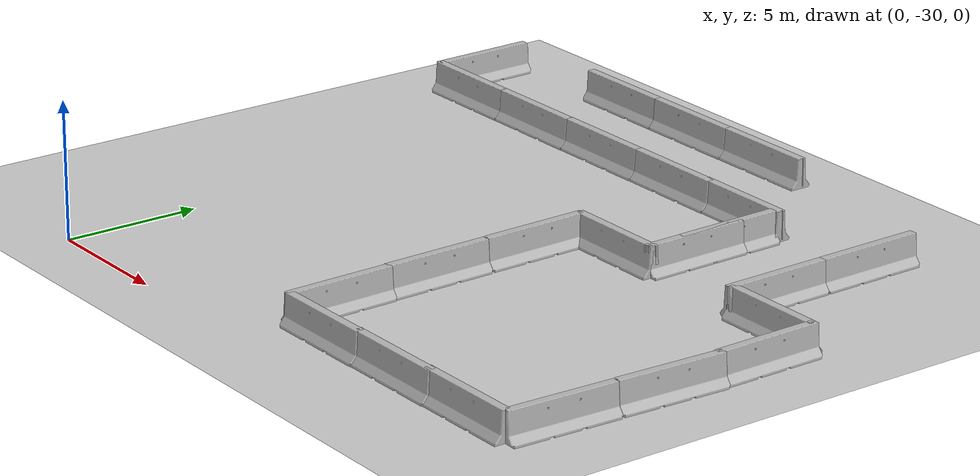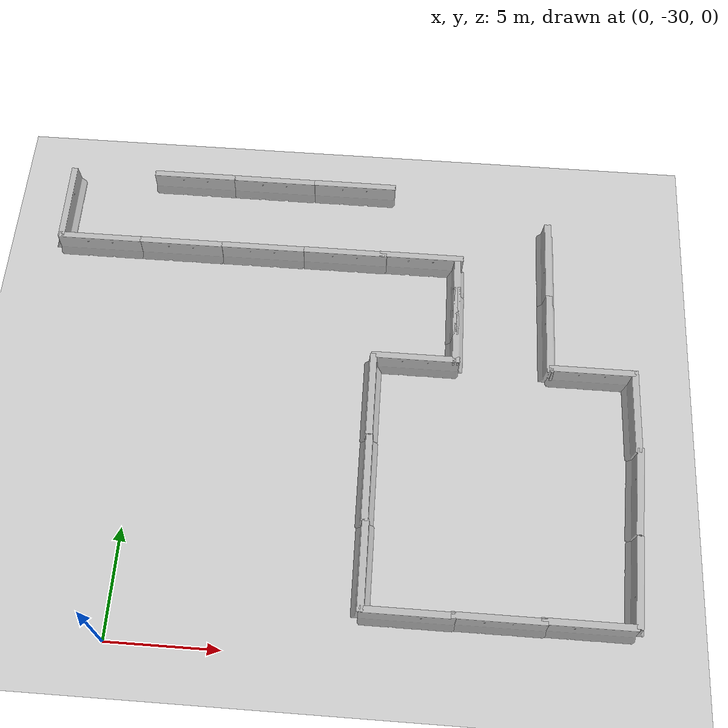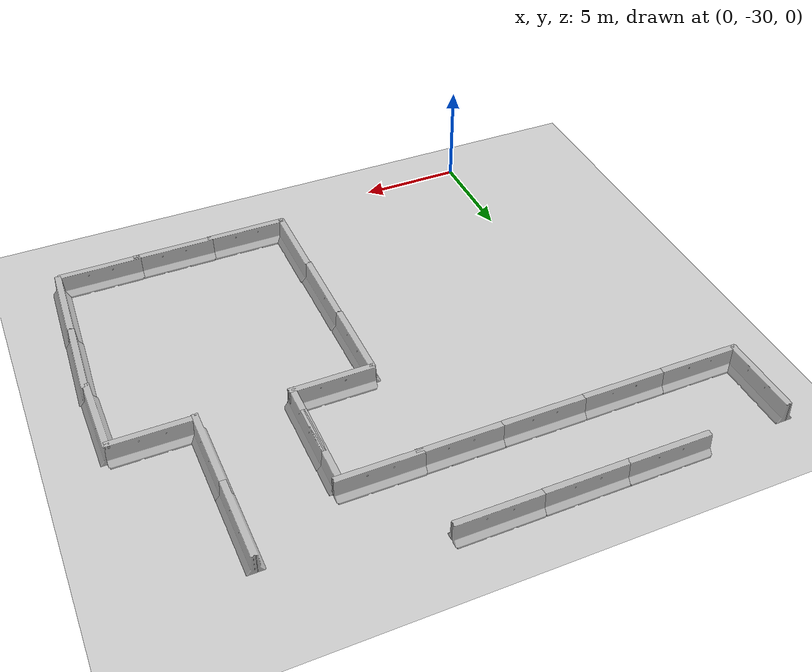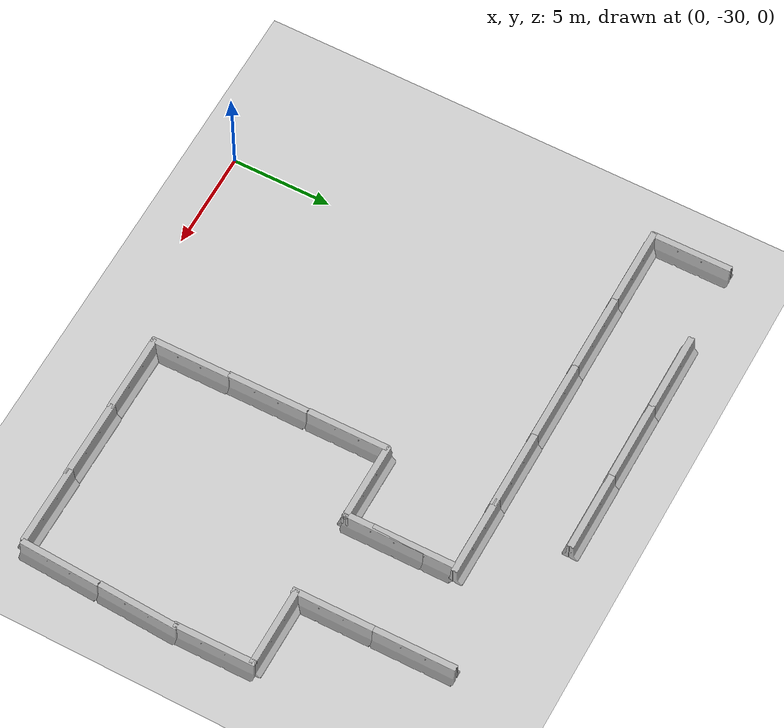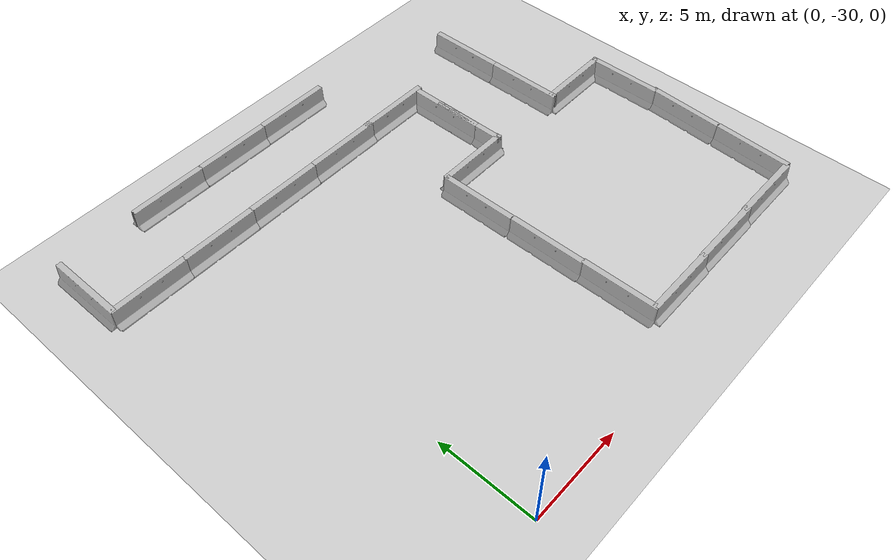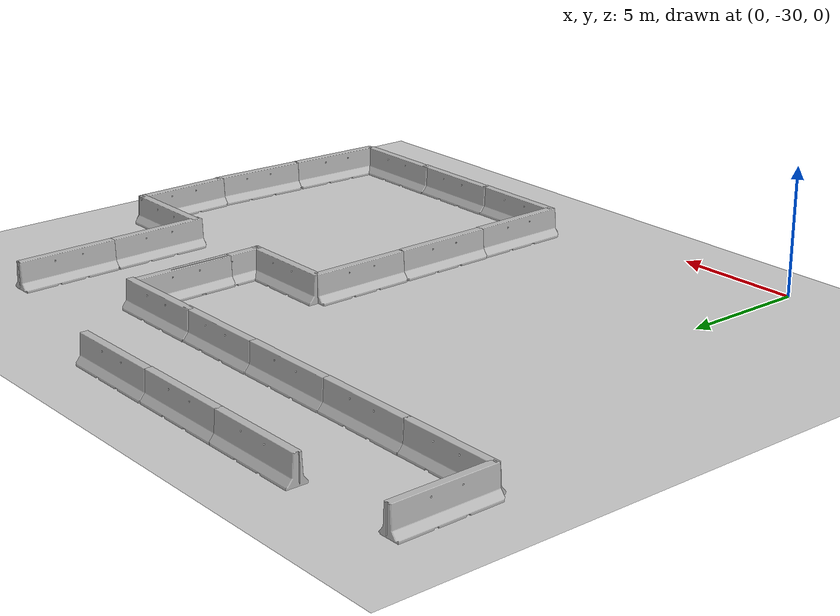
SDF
<sdf version="1.7">
 <world name="default">
  <model name="ground_plane">
   <static>1</static>
   <link name="link">
    <collision name="collision">
     <geometry><plane><normal>0 0 1</normal><size>100 100</size></plane></geometry>
     <surface><friction><ode><mu>100</mu><mu2>50</mu2></ode></friction></surface>
    </collision>
    <visual name="visual">
     <cast_shadows>0</cast_shadows>
     <geometry><plane><normal>0 0 1</normal><size>100 100</size></plane></geometry>
     <material>
      <script><uri>file://media/materials/scripts/gazebo.material</uri><name>Gazebo/Grey</name></script>
     </material>
    </visual>
   </link>
  </model>
  <model name="jersey_barrier_clone_5_clone_2">
   <static>1</static>
   <link name="link">
    <visual name="visual">
     <geometry><mesh><uri>model://jersey_barrier/meshes/jersey_barrier.dae</uri></mesh></geometry>
    </visual>
    <collision name="upright">
     <pose>0 0 0.5715 0 -0 0</pose>
     <geometry><box><size>4.06542 0.3063 1.143</size></box></geometry>
    </collision>
    <collision name="base">
     <pose>0 0 0.032258 0 -0 0</pose>
     <geometry><box><size>4.06542 0.8107 0.064516</size></box></geometry>
    </collision>
    <collision name="base2">
     <pose>0 0 0.1 0 -0 0</pose>
     <geometry><box><size>4.06542 0.65 0.1</size></box></geometry>
    </collision>
    <collision name="base3">
     <pose>0 0 0.2 0 -0 0</pose>
     <geometry><box><size>4.06542 0.5 0.1</size></box></geometry>
    </collision>
    <collision name="left-angle">
     <pose>0 -0.224 0.2401 0.9 -0 0</pose>
     <geometry><box><size>4.06542 0.5 0.064516</size></box></geometry>
    </collision>
    <collision name="right-angle">
     <pose>0 0.224 0.2401 -0.9 0 0</pose>
     <geometry><box><size>4.06542 0.5 0.064516</size></box></geometry>
    </collision>
   </link>
   <pose>-5.08874 -8.90463 0 0 -0 1.58011</pose>
  </model>
  <model name="jersey_barrier_clone_6">
   <static>1</static>
   <link name="link">
    <visual name="visual">
     <geometry><mesh><uri>model://jersey_barrier/meshes/jersey_barrier.dae</uri></mesh></geometry>
    </visual>
    <collision name="upright">
     <pose>0 0 0.5715 0 -0 0</pose>
     <geometry><box><size>4.06542 0.3063 1.143</size></box></geometry>
    </collision>
    <collision name="base">
     <pose>0 0 0.032258 0 -0 0</pose>
     <geometry><box><size>4.06542 0.8107 0.064516</size></box></geometry>
    </collision>
    <collision name="base2">
     <pose>0 0 0.1 0 -0 0</pose>
     <geometry><box><size>4.06542 0.65 0.1</size></box></geometry>
    </collision>
    <collision name="base3">
     <pose>0 0 0.2 0 -0 0</pose>
     <geometry><box><size>4.06542 0.5 0.1</size></box></geometry>
    </collision>
    <collision name="left-angle">
     <pose>0 -0.224 0.2401 0.9 -0 0</pose>
     <geometry><box><size>4.06542 0.5 0.064516</size></box></geometry>
    </collision>
    <collision name="right-angle">
     <pose>0 0.224 0.2401 -0.9 0 0</pose>
     <geometry><box><size>4.06542 0.5 0.064516</size></box></geometry>
    </collision>
   </link>
   <pose>0.984687 -6.87216 0 0 -0 0</pose>
  </model>
  <model name="jersey_barrier_clone_7">
   <static>1</static>
   <link name="link">
    <visual name="visual">
     <geometry><mesh><uri>model://jersey_barrier/meshes/jersey_barrier.dae</uri></mesh></geometry>
    </visual>
    <collision name="upright">
     <pose>0 0 0.5715 0 -0 0</pose>
     <geometry><box><size>4.06542 0.3063 1.143</size></box></geometry>
    </collision>
    <collision name="base">
     <pose>0 0 0.032258 0 -0 0</pose>
     <geometry><box><size>4.06542 0.8107 0.064516</size></box></geometry>
    </collision>
    <collision name="base2">
     <pose>0 0 0.1 0 -0 0</pose>
     <geometry><box><size>4.06542 0.65 0.1</size></box></geometry>
    </collision>
    <collision name="base3">
     <pose>0 0 0.2 0 -0 0</pose>
     <geometry><box><size>4.06542 0.5 0.1</size></box></geometry>
    </collision>
    <collision name="left-angle">
     <pose>0 -0.224 0.2401 0.9 -0 0</pose>
     <geometry><box><size>4.06542 0.5 0.064516</size></box></geometry>
    </collision>
    <collision name="right-angle">
     <pose>0 0.224 0.2401 -0.9 0 0</pose>
     <geometry><box><size>4.06542 0.5 0.064516</size></box></geometry>
    </collision>
   </link>
   <pose>-3.16651 -10.8264 0 0 -0 0</pose>
  </model>
  <model name="jersey_barrier_clone_8">
   <static>1</static>
   <link name="link">
    <visual name="visual">
     <geometry><mesh><uri>model://jersey_barrier/meshes/jersey_barrier.dae</uri></mesh></geometry>
    </visual>
    <collision name="upright">
     <pose>0 0 0.5715 0 -0 0</pose>
     <geometry><box><size>4.06542 0.3063 1.143</size></box></geometry>
    </collision>
    <collision name="base">
     <pose>0 0 0.032258 0 -0 0</pose>
     <geometry><box><size>4.06542 0.8107 0.064516</size></box></geometry>
    </collision>
    <collision name="base2">
     <pose>0 0 0.1 0 -0 0</pose>
     <geometry><box><size>4.06542 0.65 0.1</size></box></geometry>
    </collision>
    <collision name="base3">
     <pose>0 0 0.2 0 -0 0</pose>
     <geometry><box><size>4.06542 0.5 0.1</size></box></geometry>
    </collision>
    <collision name="left-angle">
     <pose>0 -0.224 0.2401 0.9 -0 0</pose>
     <geometry><box><size>4.06542 0.5 0.064516</size></box></geometry>
    </collision>
    <collision name="right-angle">
     <pose>0 0.224 0.2401 -0.9 0 0</pose>
     <geometry><box><size>4.06542 0.5 0.064516</size></box></geometry>
    </collision>
   </link>
   <pose>0.786309 -10.8193 0 0 -0 0</pose>
  </model>
  <model name="jersey_barrier_clone_9">
   <static>1</static>
   <link name="link">
    <visual name="visual">
     <geometry><mesh><uri>model://jersey_barrier/meshes/jersey_barrier.dae</uri></mesh></geometry>
    </visual>
    <collision name="upright">
     <pose>0 0 0.5715 0 -0 0</pose>
     <geometry><box><size>4.06542 0.3063 1.143</size></box></geometry>
    </collision>
    <collision name="base">
     <pose>0 0 0.032258 0 -0 0</pose>
     <geometry><box><size>4.06542 0.8107 0.064516</size></box></geometry>
    </collision>
    <collision name="base2">
     <pose>0 0 0.1 0 -0 0</pose>
     <geometry><box><size>4.06542 0.65 0.1</size></box></geometry>
    </collision>
    <collision name="base3">
     <pose>0 0 0.2 0 -0 0</pose>
     <geometry><box><size>4.06542 0.5 0.1</size></box></geometry>
    </collision>
    <collision name="left-angle">
     <pose>0 -0.224 0.2401 0.9 -0 0</pose>
     <geometry><box><size>4.06542 0.5 0.064516</size></box></geometry>
    </collision>
    <collision name="right-angle">
     <pose>0 0.224 0.2401 -0.9 0 0</pose>
     <geometry><box><size>4.06542 0.5 0.064516</size></box></geometry>
    </collision>
   </link>
   <pose>4.94322 -6.8738 0 0 -0 0</pose>
  </model>
  <model name="jersey_barrier_clone_10">
   <static>1</static>
   <link name="link">
    <visual name="visual">
     <geometry><mesh><uri>model://jersey_barrier/meshes/jersey_barrier.dae</uri></mesh></geometry>
    </visual>
    <collision name="upright">
     <pose>0 0 0.5715 0 -0 0</pose>
     <geometry><box><size>4.06542 0.3063 1.143</size></box></geometry>
    </collision>
    <collision name="base">
     <pose>0 0 0.032258 0 -0 0</pose>
     <geometry><box><size>4.06542 0.8107 0.064516</size></box></geometry>
    </collision>
    <collision name="base2">
     <pose>0 0 0.1 0 -0 0</pose>
     <geometry><box><size>4.06542 0.65 0.1</size></box></geometry>
    </collision>
    <collision name="base3">
     <pose>0 0 0.2 0 -0 0</pose>
     <geometry><box><size>4.06542 0.5 0.1</size></box></geometry>
    </collision>
    <collision name="left-angle">
     <pose>0 -0.224 0.2401 0.9 -0 0</pose>
     <geometry><box><size>4.06542 0.5 0.064516</size></box></geometry>
    </collision>
    <collision name="right-angle">
     <pose>0 0.224 0.2401 -0.9 0 0</pose>
     <geometry><box><size>4.06542 0.5 0.064516</size></box></geometry>
    </collision>
   </link>
   <pose>4.75505 -10.805 0 0 -0 0</pose>
  </model>
  <model name="jersey_barrier_clone_11">
   <static>1</static>
   <link name="link">
    <visual name="visual">
     <geometry><mesh><uri>model://jersey_barrier/meshes/jersey_barrier.dae</uri></mesh></geometry>
    </visual>
    <collision name="upright">
     <pose>0 0 0.5715 0 -0 0</pose>
     <geometry><box><size>4.06542 0.3063 1.143</size></box></geometry>
    </collision>
    <collision name="base">
     <pose>0 0 0.032258 0 -0 0</pose>
     <geometry><box><size>4.06542 0.8107 0.064516</size></box></geometry>
    </collision>
    <collision name="base2">
     <pose>0 0 0.1 0 -0 0</pose>
     <geometry><box><size>4.06542 0.65 0.1</size></box></geometry>
    </collision>
    <collision name="base3">
     <pose>0 0 0.2 0 -0 0</pose>
     <geometry><box><size>4.06542 0.5 0.1</size></box></geometry>
    </collision>
    <collision name="left-angle">
     <pose>0 -0.224 0.2401 0.9 -0 0</pose>
     <geometry><box><size>4.06542 0.5 0.064516</size></box></geometry>
    </collision>
    <collision name="right-angle">
     <pose>0 0.224 0.2401 -0.9 0 0</pose>
     <geometry><box><size>4.06542 0.5 0.064516</size></box></geometry>
    </collision>
   </link>
   <pose>8.93899 -6.86162 0 0 -0 0</pose>
  </model>
  <model name="jersey_barrier_clone_12">
   <static>1</static>
   <link name="link">
    <visual name="visual">
     <geometry><mesh><uri>model://jersey_barrier/meshes/jersey_barrier.dae</uri></mesh></geometry>
    </visual>
    <collision name="upright">
     <pose>0 0 0.5715 0 -0 0</pose>
     <geometry><box><size>4.06542 0.3063 1.143</size></box></geometry>
    </collision>
    <collision name="base">
     <pose>0 0 0.032258 0 -0 0</pose>
     <geometry><box><size>4.06542 0.8107 0.064516</size></box></geometry>
    </collision>
    <collision name="base2">
     <pose>0 0 0.1 0 -0 0</pose>
     <geometry><box><size>4.06542 0.65 0.1</size></box></geometry>
    </collision>
    <collision name="base3">
     <pose>0 0 0.2 0 -0 0</pose>
     <geometry><box><size>4.06542 0.5 0.1</size></box></geometry>
    </collision>
    <collision name="left-angle">
     <pose>0 -0.224 0.2401 0.9 -0 0</pose>
     <geometry><box><size>4.06542 0.5 0.064516</size></box></geometry>
    </collision>
    <collision name="right-angle">
     <pose>0 0.224 0.2401 -0.9 0 0</pose>
     <geometry><box><size>4.06542 0.5 0.064516</size></box></geometry>
    </collision>
   </link>
   <pose>8.74966 -10.7927 0 0 -0 0</pose>
  </model>
  <model name="jersey_barrier_clone_12_clone">
   <static>1</static>
   <link name="link">
    <visual name="visual">
     <geometry><mesh><uri>model://jersey_barrier/meshes/jersey_barrier.dae</uri></mesh></geometry>
    </visual>
    <collision name="upright">
     <pose>0 0 0.5715 0 -0 0</pose>
     <geometry><box><size>4.06542 0.3063 1.143</size></box></geometry>
    </collision>
    <collision name="base">
     <pose>0 0 0.032258 0 -0 0</pose>
     <geometry><box><size>4.06542 0.8107 0.064516</size></box></geometry>
    </collision>
    <collision name="base2">
     <pose>0 0 0.1 0 -0 0</pose>
     <geometry><box><size>4.06542 0.65 0.1</size></box></geometry>
    </collision>
    <collision name="base3">
     <pose>0 0 0.2 0 -0 0</pose>
     <geometry><box><size>4.06542 0.5 0.1</size></box></geometry>
    </collision>
    <collision name="left-angle">
     <pose>0 -0.224 0.2401 0.9 -0 0</pose>
     <geometry><box><size>4.06542 0.5 0.064516</size></box></geometry>
    </collision>
    <collision name="right-angle">
     <pose>0 0.224 0.2401 -0.9 0 0</pose>
     <geometry><box><size>4.06542 0.5 0.064516</size></box></geometry>
    </collision>
   </link>
   <pose>12.4162 -10.7691 0 0 -0 0</pose>
  </model>
  <model name="jersey_barrier_clone_5_clone_clone_clone_1_clone">
   <static>1</static>
   <link name="link">
    <visual name="visual">
     <geometry><mesh><uri>model://jersey_barrier/meshes/jersey_barrier.dae</uri></mesh></geometry>
    </visual>
    <collision name="upright">
     <pose>0 0 0.5715 0 -0 0</pose>
     <geometry><box><size>4.06542 0.3063 1.143</size></box></geometry>
    </collision>
    <collision name="base">
     <pose>0 0 0.032258 0 -0 0</pose>
     <geometry><box><size>4.06542 0.8107 0.064516</size></box></geometry>
    </collision>
    <collision name="base2">
     <pose>0 0 0.1 0 -0 0</pose>
     <geometry><box><size>4.06542 0.65 0.1</size></box></geometry>
    </collision>
    <collision name="base3">
     <pose>0 0 0.2 0 -0 0</pose>
     <geometry><box><size>4.06542 0.5 0.1</size></box></geometry>
    </collision>
    <collision name="left-angle">
     <pose>0 -0.224 0.2401 0.9 -0 0</pose>
     <geometry><box><size>4.06542 0.5 0.064516</size></box></geometry>
    </collision>
    <collision name="right-angle">
     <pose>0 0.224 0.2401 -0.9 0 0</pose>
     <geometry><box><size>4.06542 0.5 0.064516</size></box></geometry>
    </collision>
   </link>
   <pose>18.5041 -10.5124 0 0 -0 1.58011</pose>
  </model>
  <model name="jersey_barrier_clone_5_clone_clone_clone_1_clone_0">
   <static>1</static>
   <link name="link">
    <visual name="visual">
     <geometry><mesh><uri>model://jersey_barrier/meshes/jersey_barrier.dae</uri></mesh></geometry>
    </visual>
    <collision name="upright">
     <pose>0 0 0.5715 0 -0 0</pose>
     <geometry><box><size>4.06542 0.3063 1.143</size></box></geometry>
    </collision>
    <collision name="base">
     <pose>0 0 0.032258 0 -0 0</pose>
     <geometry><box><size>4.06542 0.8107 0.064516</size></box></geometry>
    </collision>
    <collision name="base2">
     <pose>0 0 0.1 0 -0 0</pose>
     <geometry><box><size>4.06542 0.65 0.1</size></box></geometry>
    </collision>
    <collision name="base3">
     <pose>0 0 0.2 0 -0 0</pose>
     <geometry><box><size>4.06542 0.5 0.1</size></box></geometry>
    </collision>
    <collision name="left-angle">
     <pose>0 -0.224 0.2401 0.9 -0 0</pose>
     <geometry><box><size>4.06542 0.5 0.064516</size></box></geometry>
    </collision>
    <collision name="right-angle">
     <pose>0 0.224 0.2401 -0.9 0 0</pose>
     <geometry><box><size>4.06542 0.5 0.064516</size></box></geometry>
    </collision>
   </link>
   <pose>14.1887 -12.9127 0 0 -0 1.58011</pose>
  </model>
  <model name="jersey_barrier_clone_5_clone_clone_clone_1_clone_clone">
   <static>1</static>
   <link name="link">
    <visual name="visual">
     <geometry><mesh><uri>model://jersey_barrier/meshes/jersey_barrier.dae</uri></mesh></geometry>
    </visual>
    <collision name="upright">
     <pose>0 0 0.5715 0 -0 0</pose>
     <geometry><box><size>4.06542 0.3063 1.143</size></box></geometry>
    </collision>
    <collision name="base">
     <pose>0 0 0.032258 0 -0 0</pose>
     <geometry><box><size>4.06542 0.8107 0.064516</size></box></geometry>
    </collision>
    <collision name="base2">
     <pose>0 0 0.1 0 -0 0</pose>
     <geometry><box><size>4.06542 0.65 0.1</size></box></geometry>
    </collision>
    <collision name="base3">
     <pose>0 0 0.2 0 -0 0</pose>
     <geometry><box><size>4.06542 0.5 0.1</size></box></geometry>
    </collision>
    <collision name="left-angle">
     <pose>0 -0.224 0.2401 0.9 -0 0</pose>
     <geometry><box><size>4.06542 0.5 0.064516</size></box></geometry>
    </collision>
    <collision name="right-angle">
     <pose>0 0.224 0.2401 -0.9 0 0</pose>
     <geometry><box><size>4.06542 0.5 0.064516</size></box></geometry>
    </collision>
   </link>
   <pose>18.5466 -14.5181 0 0 -0 1.58011</pose>
  </model>
  <model name="jersey_barrier_clone_5_clone_clone_clone_1_clone_clone_0">
   <static>1</static>
   <link name="link">
    <visual name="visual">
     <geometry><mesh><uri>model://jersey_barrier/meshes/jersey_barrier.dae</uri></mesh></geometry>
    </visual>
    <collision name="upright">
     <pose>0 0 0.5715 0 -0 0</pose>
     <geometry><box><size>4.06542 0.3063 1.143</size></box></geometry>
    </collision>
    <collision name="base">
     <pose>0 0 0.032258 0 -0 0</pose>
     <geometry><box><size>4.06542 0.8107 0.064516</size></box></geometry>
    </collision>
    <collision name="base2">
     <pose>0 0 0.1 0 -0 0</pose>
     <geometry><box><size>4.06542 0.65 0.1</size></box></geometry>
    </collision>
    <collision name="base3">
     <pose>0 0 0.2 0 -0 0</pose>
     <geometry><box><size>4.06542 0.5 0.1</size></box></geometry>
    </collision>
    <collision name="left-angle">
     <pose>0 -0.224 0.2401 0.9 -0 0</pose>
     <geometry><box><size>4.06542 0.5 0.064516</size></box></geometry>
    </collision>
    <collision name="right-angle">
     <pose>0 0.224 0.2401 -0.9 0 0</pose>
     <geometry><box><size>4.06542 0.5 0.064516</size></box></geometry>
    </collision>
   </link>
   <pose>14.2128 -14.3645 0 0 -0 1.58011</pose>
  </model>
  <model name="jersey_barrier_clone_12_clone_clone">
   <static>1</static>
   <link name="link">
    <visual name="visual">
     <geometry><mesh><uri>model://jersey_barrier/meshes/jersey_barrier.dae</uri></mesh></geometry>
    </visual>
    <collision name="upright">
     <pose>0 0 0.5715 0 -0 0</pose>
     <geometry><box><size>4.06542 0.3063 1.143</size></box></geometry>
    </collision>
    <collision name="base">
     <pose>0 0 0.032258 0 -0 0</pose>
     <geometry><box><size>4.06542 0.8107 0.064516</size></box></geometry>
    </collision>
    <collision name="base2">
     <pose>0 0 0.1 0 -0 0</pose>
     <geometry><box><size>4.06542 0.65 0.1</size></box></geometry>
    </collision>
    <collision name="base3">
     <pose>0 0 0.2 0 -0 0</pose>
     <geometry><box><size>4.06542 0.5 0.1</size></box></geometry>
    </collision>
    <collision name="left-angle">
     <pose>0 -0.224 0.2401 0.9 -0 0</pose>
     <geometry><box><size>4.06542 0.5 0.064516</size></box></geometry>
    </collision>
    <collision name="right-angle">
     <pose>0 0.224 0.2401 -0.9 0 0</pose>
     <geometry><box><size>4.06542 0.5 0.064516</size></box></geometry>
    </collision>
   </link>
   <pose>12.3928 -16.2286 0 0 -0 0</pose>
  </model>
  <model name="jersey_barrier_clone_12_clone_clone_0">
   <static>1</static>
   <link name="link">
    <visual name="visual">
     <geometry><mesh><uri>model://jersey_barrier/meshes/jersey_barrier.dae</uri></mesh></geometry>
    </visual>
    <collision name="upright">
     <pose>0 0 0.5715 0 -0 0</pose>
     <geometry><box><size>4.06542 0.3063 1.143</size></box></geometry>
    </collision>
    <collision name="base">
     <pose>0 0 0.032258 0 -0 0</pose>
     <geometry><box><size>4.06542 0.8107 0.064516</size></box></geometry>
    </collision>
    <collision name="base2">
     <pose>0 0 0.1 0 -0 0</pose>
     <geometry><box><size>4.06542 0.65 0.1</size></box></geometry>
    </collision>
    <collision name="base3">
     <pose>0 0 0.2 0 -0 0</pose>
     <geometry><box><size>4.06542 0.5 0.1</size></box></geometry>
    </collision>
    <collision name="left-angle">
     <pose>0 -0.224 0.2401 0.9 -0 0</pose>
     <geometry><box><size>4.06542 0.5 0.064516</size></box></geometry>
    </collision>
    <collision name="right-angle">
     <pose>0 0.224 0.2401 -0.9 0 0</pose>
     <geometry><box><size>4.06542 0.5 0.064516</size></box></geometry>
    </collision>
   </link>
   <pose>20.4977 -16.3266 0 0 -0 0</pose>
  </model>
  <model name="jersey_barrier_clone_5_clone_clone_clone_1_clone_clone_clone">
   <static>1</static>
   <link name="link">
    <visual name="visual">
     <geometry><mesh><uri>model://jersey_barrier/meshes/jersey_barrier.dae</uri></mesh></geometry>
    </visual>
    <collision name="upright">
     <pose>0 0 0.5715 0 -0 0</pose>
     <geometry><box><size>4.06542 0.3063 1.143</size></box></geometry>
    </collision>
    <collision name="base">
     <pose>0 0 0.032258 0 -0 0</pose>
     <geometry><box><size>4.06542 0.8107 0.064516</size></box></geometry>
    </collision>
    <collision name="base2">
     <pose>0 0 0.1 0 -0 0</pose>
     <geometry><box><size>4.06542 0.65 0.1</size></box></geometry>
    </collision>
    <collision name="base3">
     <pose>0 0 0.2 0 -0 0</pose>
     <geometry><box><size>4.06542 0.5 0.1</size></box></geometry>
    </collision>
    <collision name="left-angle">
     <pose>0 -0.224 0.2401 0.9 -0 0</pose>
     <geometry><box><size>4.06542 0.5 0.064516</size></box></geometry>
    </collision>
    <collision name="right-angle">
     <pose>0 0.224 0.2401 -0.9 0 0</pose>
     <geometry><box><size>4.06542 0.5 0.064516</size></box></geometry>
    </collision>
   </link>
   <pose>22.4332 -18.196 0 0 -0 1.58011</pose>
  </model>
  <model name="jersey_barrier_clone_5_clone_clone_clone_1_clone_clone_clone_0">
   <static>1</static>
   <link name="link">
    <visual name="visual">
     <geometry><mesh><uri>model://jersey_barrier/meshes/jersey_barrier.dae</uri></mesh></geometry>
    </visual>
    <collision name="upright">
     <pose>0 0 0.5715 0 -0 0</pose>
     <geometry><box><size>4.06542 0.3063 1.143</size></box></geometry>
    </collision>
    <collision name="base">
     <pose>0 0 0.032258 0 -0 0</pose>
     <geometry><box><size>4.06542 0.8107 0.064516</size></box></geometry>
    </collision>
    <collision name="base2">
     <pose>0 0 0.1 0 -0 0</pose>
     <geometry><box><size>4.06542 0.65 0.1</size></box></geometry>
    </collision>
    <collision name="base3">
     <pose>0 0 0.2 0 -0 0</pose>
     <geometry><box><size>4.06542 0.5 0.1</size></box></geometry>
    </collision>
    <collision name="left-angle">
     <pose>0 -0.224 0.2401 0.9 -0 0</pose>
     <geometry><box><size>4.06542 0.5 0.064516</size></box></geometry>
    </collision>
    <collision name="right-angle">
     <pose>0 0.224 0.2401 -0.9 0 0</pose>
     <geometry><box><size>4.06542 0.5 0.064516</size></box></geometry>
    </collision>
   </link>
   <pose>22.4203 -22.0028 0 0 -0 1.52129</pose>
  </model>
  <model name="jersey_barrier_clone_5_clone_clone_clone_1_clone_clone_clone_0_clone">
   <static>1</static>
   <link name="link">
    <visual name="visual">
     <geometry><mesh><uri>model://jersey_barrier/meshes/jersey_barrier.dae</uri></mesh></geometry>
    </visual>
    <collision name="upright">
     <pose>0 0 0.5715 0 -0 0</pose>
     <geometry><box><size>4.06542 0.3063 1.143</size></box></geometry>
    </collision>
    <collision name="base">
     <pose>0 0 0.032258 0 -0 0</pose>
     <geometry><box><size>4.06542 0.8107 0.064516</size></box></geometry>
    </collision>
    <collision name="base2">
     <pose>0 0 0.1 0 -0 0</pose>
     <geometry><box><size>4.06542 0.65 0.1</size></box></geometry>
    </collision>
    <collision name="base3">
     <pose>0 0 0.2 0 -0 0</pose>
     <geometry><box><size>4.06542 0.5 0.1</size></box></geometry>
    </collision>
    <collision name="left-angle">
     <pose>0 -0.224 0.2401 0.9 -0 0</pose>
     <geometry><box><size>4.06542 0.5 0.064516</size></box></geometry>
    </collision>
    <collision name="right-angle">
     <pose>0 0.224 0.2401 -0.9 0 0</pose>
     <geometry><box><size>4.06542 0.5 0.064516</size></box></geometry>
    </collision>
   </link>
   <pose>10.4901 -18.191 0 0 -0 1.58011</pose>
  </model>
  <model name="jersey_barrier_clone_5_clone_clone_clone_1_clone_clone_clone_0_clone_0">
   <static>1</static>
   <link name="link">
    <visual name="visual">
     <geometry><mesh><uri>model://jersey_barrier/meshes/jersey_barrier.dae</uri></mesh></geometry>
    </visual>
    <collision name="upright">
     <pose>0 0 0.5715 0 -0 0</pose>
     <geometry><box><size>4.06542 0.3063 1.143</size></box></geometry>
    </collision>
    <collision name="base">
     <pose>0 0 0.032258 0 -0 0</pose>
     <geometry><box><size>4.06542 0.8107 0.064516</size></box></geometry>
    </collision>
    <collision name="base2">
     <pose>0 0 0.1 0 -0 0</pose>
     <geometry><box><size>4.06542 0.65 0.1</size></box></geometry>
    </collision>
    <collision name="base3">
     <pose>0 0 0.2 0 -0 0</pose>
     <geometry><box><size>4.06542 0.5 0.1</size></box></geometry>
    </collision>
    <collision name="left-angle">
     <pose>0 -0.224 0.2401 0.9 -0 0</pose>
     <geometry><box><size>4.06542 0.5 0.064516</size></box></geometry>
    </collision>
    <collision name="right-angle">
     <pose>0 0.224 0.2401 -0.9 0 0</pose>
     <geometry><box><size>4.06542 0.5 0.064516</size></box></geometry>
    </collision>
   </link>
   <pose>10.5525 -22.2545 0 0 -0 1.58011</pose>
  </model>
  <model name="jersey_barrier_clone_5_clone_clone_clone_1_clone_clone_clone_0_clone_1">
   <static>1</static>
   <link name="link">
    <visual name="visual">
     <geometry><mesh><uri>model://jersey_barrier/meshes/jersey_barrier.dae</uri></mesh></geometry>
    </visual>
    <collision name="upright">
     <pose>0 0 0.5715 0 -0 0</pose>
     <geometry><box><size>4.06542 0.3063 1.143</size></box></geometry>
    </collision>
    <collision name="base">
     <pose>0 0 0.032258 0 -0 0</pose>
     <geometry><box><size>4.06542 0.8107 0.064516</size></box></geometry>
    </collision>
    <collision name="base2">
     <pose>0 0 0.1 0 -0 0</pose>
     <geometry><box><size>4.06542 0.65 0.1</size></box></geometry>
    </collision>
    <collision name="base3">
     <pose>0 0 0.2 0 -0 0</pose>
     <geometry><box><size>4.06542 0.5 0.1</size></box></geometry>
    </collision>
    <collision name="left-angle">
     <pose>0 -0.224 0.2401 0.9 -0 0</pose>
     <geometry><box><size>4.06542 0.5 0.064516</size></box></geometry>
    </collision>
    <collision name="right-angle">
     <pose>0 0.224 0.2401 -0.9 0 0</pose>
     <geometry><box><size>4.06542 0.5 0.064516</size></box></geometry>
    </collision>
   </link>
   <pose>22.2466 -26.0617 0 0 -0 1.52361</pose>
  </model>
  <model name="jersey_barrier_clone_5_clone_clone_clone_1_clone_clone_clone_0_clone_2">
   <static>1</static>
   <link name="link">
    <visual name="visual">
     <geometry><mesh><uri>model://jersey_barrier/meshes/jersey_barrier.dae</uri></mesh></geometry>
    </visual>
    <collision name="upright">
     <pose>0 0 0.5715 0 -0 0</pose>
     <geometry><box><size>4.06542 0.3063 1.143</size></box></geometry>
    </collision>
    <collision name="base">
     <pose>0 0 0.032258 0 -0 0</pose>
     <geometry><box><size>4.06542 0.8107 0.064516</size></box></geometry>
    </collision>
    <collision name="base2">
     <pose>0 0 0.1 0 -0 0</pose>
     <geometry><box><size>4.06542 0.65 0.1</size></box></geometry>
    </collision>
    <collision name="base3">
     <pose>0 0 0.2 0 -0 0</pose>
     <geometry><box><size>4.06542 0.5 0.1</size></box></geometry>
    </collision>
    <collision name="left-angle">
     <pose>0 -0.224 0.2401 0.9 -0 0</pose>
     <geometry><box><size>4.06542 0.5 0.064516</size></box></geometry>
    </collision>
    <collision name="right-angle">
     <pose>0 0.224 0.2401 -0.9 0 0</pose>
     <geometry><box><size>4.06542 0.5 0.064516</size></box></geometry>
    </collision>
   </link>
   <pose>10.6348 -26.1886 0 0 -0 1.58011</pose>
  </model>
  <model name="jersey_barrier_clone_12_clone_clone_clone">
   <static>1</static>
   <link name="link">
    <visual name="visual">
     <geometry><mesh><uri>model://jersey_barrier/meshes/jersey_barrier.dae</uri></mesh></geometry>
    </visual>
    <collision name="upright">
     <pose>0 0 0.5715 0 -0 0</pose>
     <geometry><box><size>4.06542 0.3063 1.143</size></box></geometry>
    </collision>
    <collision name="base">
     <pose>0 0 0.032258 0 -0 0</pose>
     <geometry><box><size>4.06542 0.8107 0.064516</size></box></geometry>
    </collision>
    <collision name="base2">
     <pose>0 0 0.1 0 -0 0</pose>
     <geometry><box><size>4.06542 0.65 0.1</size></box></geometry>
    </collision>
    <collision name="base3">
     <pose>0 0 0.2 0 -0 0</pose>
     <geometry><box><size>4.06542 0.5 0.1</size></box></geometry>
    </collision>
    <collision name="left-angle">
     <pose>0 -0.224 0.2401 0.9 -0 0</pose>
     <geometry><box><size>4.06542 0.5 0.064516</size></box></geometry>
    </collision>
    <collision name="right-angle">
     <pose>0 0.224 0.2401 -0.9 0 0</pose>
     <geometry><box><size>4.06542 0.5 0.064516</size></box></geometry>
    </collision>
   </link>
   <pose>12.5918 -28.0775 0 0 -0 0</pose>
  </model>
  <model name="jersey_barrier_clone_12_clone_clone_clone_0">
   <static>1</static>
   <link name="link">
    <visual name="visual">
     <geometry><mesh><uri>model://jersey_barrier/meshes/jersey_barrier.dae</uri></mesh></geometry>
    </visual>
    <collision name="upright">
     <pose>0 0 0.5715 0 -0 0</pose>
     <geometry><box><size>4.06542 0.3063 1.143</size></box></geometry>
    </collision>
    <collision name="base">
     <pose>0 0 0.032258 0 -0 0</pose>
     <geometry><box><size>4.06542 0.8107 0.064516</size></box></geometry>
    </collision>
    <collision name="base2">
     <pose>0 0 0.1 0 -0 0</pose>
     <geometry><box><size>4.06542 0.65 0.1</size></box></geometry>
    </collision>
    <collision name="base3">
     <pose>0 0 0.2 0 -0 0</pose>
     <geometry><box><size>4.06542 0.5 0.1</size></box></geometry>
    </collision>
    <collision name="left-angle">
     <pose>0 -0.224 0.2401 0.9 -0 0</pose>
     <geometry><box><size>4.06542 0.5 0.064516</size></box></geometry>
    </collision>
    <collision name="right-angle">
     <pose>0 0.224 0.2401 -0.9 0 0</pose>
     <geometry><box><size>4.06542 0.5 0.064516</size></box></geometry>
    </collision>
   </link>
   <pose>16.402 -28.0474 0 0 -0 0</pose>
  </model>
  <model name="jersey_barrier_clone_12_clone_clone_clone_1">
   <static>1</static>
   <link name="link">
    <visual name="visual">
     <geometry><mesh><uri>model://jersey_barrier/meshes/jersey_barrier.dae</uri></mesh></geometry>
    </visual>
    <collision name="upright">
     <pose>0 0 0.5715 0 -0 0</pose>
     <geometry><box><size>4.06542 0.3063 1.143</size></box></geometry>
    </collision>
    <collision name="base">
     <pose>0 0 0.032258 0 -0 0</pose>
     <geometry><box><size>4.06542 0.8107 0.064516</size></box></geometry>
    </collision>
    <collision name="base2">
     <pose>0 0 0.1 0 -0 0</pose>
     <geometry><box><size>4.06542 0.65 0.1</size></box></geometry>
    </collision>
    <collision name="base3">
     <pose>0 0 0.2 0 -0 0</pose>
     <geometry><box><size>4.06542 0.5 0.1</size></box></geometry>
    </collision>
    <collision name="left-angle">
     <pose>0 -0.224 0.2401 0.9 -0 0</pose>
     <geometry><box><size>4.06542 0.5 0.064516</size></box></geometry>
    </collision>
    <collision name="right-angle">
     <pose>0 0.224 0.2401 -0.9 0 0</pose>
     <geometry><box><size>4.06542 0.5 0.064516</size></box></geometry>
    </collision>
   </link>
   <pose>20.1122 -28.0162 0 0 -0 0</pose>
  </model>
 </world>
</sdf>
